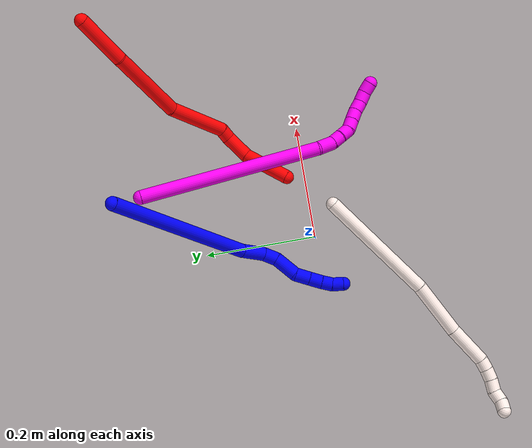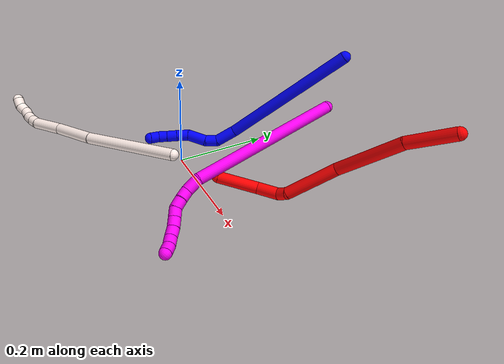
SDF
<sdf version="1.7">
 <world name="default">
  <model name="1">
   <static>0</static>
   <link name="1">
    <collision name="collision-cylinder-e_1_1_4">
     <pose>0.015487 -0.008972 -0.145802 3.08013 0.105624 2.08817</pose>
     <geometry><cylinder><radius>0.0125</radius><length>0.293792</length></cylinder></geometry>
     <surface>
      <friction><ode><mu>1.16</mu><mu2>1.16</mu2><slip1>0</slip1><slip2>0</slip2></ode></friction>
      <contact><ode><kp>1e+06</kp><kd>1</kd><max_vel>0</max_vel><min_depth>0.001</min_depth></ode></contact>
     </surface>
    </collision>
    <visual name="visual-cylinder-e_1_1_4">
     <pose>0.015487 -0.008972 -0.145802 3.08013 0.105624 2.08817</pose>
     <geometry><cylinder><radius>0.0125</radius><length>0.293792</length></cylinder></geometry>
     <material><ambient>0 0 1 1</ambient></material>
    </visual>
    <collision name="collision-cylinder-e_2_4_5">
     <pose>0.035038 -0.024712 -0.313242 2.83845 0.177366 1.05435</pose>
     <geometry><cylinder><radius>0.0125</radius><length>0.046067</length></cylinder></geometry>
     <surface>
      <friction><ode><mu>1.16</mu><mu2>1.16</mu2><slip1>0</slip1><slip2>0</slip2></ode></friction>
      <contact><ode><kp>1e+06</kp><kd>1</kd><max_vel>0</max_vel><min_depth>0.001</min_depth></ode></contact>
     </surface>
    </collision>
    <visual name="visual-cylinder-e_2_4_5">
     <pose>0.035038 -0.024712 -0.313242 2.83845 0.177366 1.05435</pose>
     <geometry><cylinder><radius>0.0125</radius><length>0.046067</length></cylinder></geometry>
     <material><ambient>0 0 1 1</ambient></material>
    </visual>
    <collision name="collision-cylinder-e_3_5_6">
     <pose>0.036404 -0.038968 -0.345123 2.51037 -0.209485 -0.622949</pose>
     <geometry><cylinder><radius>0.0125</radius><length>0.025944</length></cylinder></geometry>
     <surface>
      <friction><ode><mu>1.16</mu><mu2>1.16</mu2><slip1>0</slip1><slip2>0</slip2></ode></friction>
      <contact><ode><kp>1e+06</kp><kd>1</kd><max_vel>0</max_vel><min_depth>0.001</min_depth></ode></contact>
     </surface>
    </collision>
    <visual name="visual-cylinder-e_3_5_6">
     <pose>0.036404 -0.038968 -0.345123 2.51037 -0.209485 -0.622949</pose>
     <geometry><cylinder><radius>0.0125</radius><length>0.025944</length></cylinder></geometry>
     <material><ambient>0 0 1 1</ambient></material>
    </visual>
    <collision name="collision-cylinder-e_4_6_7">
     <pose>0.021955 -0.057896 -0.37002 2.47874 -0.563728 -1.39907</pose>
     <geometry><cylinder><radius>0.0125</radius><length>0.043987</length></cylinder></geometry>
     <surface>
      <friction><ode><mu>1.16</mu><mu2>1.16</mu2><slip1>0</slip1><slip2>0</slip2></ode></friction>
      <contact><ode><kp>1e+06</kp><kd>1</kd><max_vel>0</max_vel><min_depth>0.001</min_depth></ode></contact>
     </surface>
    </collision>
    <visual name="visual-cylinder-e_4_6_7">
     <pose>0.021955 -0.057896 -0.37002 2.47874 -0.563728 -1.39907</pose>
     <geometry><cylinder><radius>0.0125</radius><length>0.043987</length></cylinder></geometry>
     <material><ambient>0 0 1 1</ambient></material>
    </visual>
    <collision name="collision-cylinder-e_5_7_8">
     <pose>0.008404 -0.077561 -0.394896 2.46401 -0.136244 -0.382511</pose>
     <geometry><cylinder><radius>0.0125</radius><length>0.026487</length></cylinder></geometry>
     <surface>
      <friction><ode><mu>1.16</mu><mu2>1.16</mu2><slip1>0</slip1><slip2>0</slip2></ode></friction>
      <contact><ode><kp>1e+06</kp><kd>1</kd><max_vel>0</max_vel><min_depth>0.001</min_depth></ode></contact>
     </surface>
    </collision>
    <visual name="visual-cylinder-e_5_7_8">
     <pose>0.008404 -0.077561 -0.394896 2.46401 -0.136244 -0.382511</pose>
     <geometry><cylinder><radius>0.0125</radius><length>0.026487</length></cylinder></geometry>
     <material><ambient>0 0 1 1</ambient></material>
    </visual>
    <collision name="collision-cylinder-e_6_8_9">
     <pose>0.00518 -0.092933 -0.414323 2.48143 -0.121655 -0.351838</pose>
     <geometry><cylinder><radius>0.0125</radius><length>0.02348</length></cylinder></geometry>
     <surface>
      <friction><ode><mu>1.16</mu><mu2>1.16</mu2><slip1>0</slip1><slip2>0</slip2></ode></friction>
      <contact><ode><kp>1e+06</kp><kd>1</kd><max_vel>0</max_vel><min_depth>0.001</min_depth></ode></contact>
     </surface>
    </collision>
    <visual name="visual-cylinder-e_6_8_9">
     <pose>0.00518 -0.092933 -0.414323 2.48143 -0.121655 -0.351838</pose>
     <geometry><cylinder><radius>0.0125</radius><length>0.02348</length></cylinder></geometry>
     <material><ambient>0 0 1 1</ambient></material>
    </visual>
    <collision name="collision-cylinder-e_7_9_10">
     <pose>0.002821 -0.106984 -0.430739 2.37796 -0.09333 -0.231571</pose>
     <geometry><cylinder><radius>0.0125</radius><length>0.020056</length></cylinder></geometry>
     <surface>
      <friction><ode><mu>1.16</mu><mu2>1.16</mu2><slip1>0</slip1><slip2>0</slip2></ode></friction>
      <contact><ode><kp>1e+06</kp><kd>1</kd><max_vel>0</max_vel><min_depth>0.001</min_depth></ode></contact>
     </surface>
    </collision>
    <visual name="visual-cylinder-e_7_9_10">
     <pose>0.002821 -0.106984 -0.430739 2.37796 -0.09333 -0.231571</pose>
     <geometry><cylinder><radius>0.0125</radius><length>0.020056</length></cylinder></geometry>
     <material><ambient>0 0 1 1</ambient></material>
    </visual>
    <collision name="collision-cylinder-e_8_10_2">
     <pose>0.003317 -0.121835 -0.444009 2.2221 0.14219 0.2857</pose>
     <geometry><cylinder><radius>0.0125</radius><length>0.020188</length></cylinder></geometry>
     <surface>
      <friction><ode><mu>1.16</mu><mu2>1.16</mu2><slip1>0</slip1><slip2>0</slip2></ode></friction>
      <contact><ode><kp>1e+06</kp><kd>1</kd><max_vel>0</max_vel><min_depth>0.001</min_depth></ode></contact>
     </surface>
    </collision>
    <visual name="visual-cylinder-e_8_10_2">
     <pose>0.003317 -0.121835 -0.444009 2.2221 0.14219 0.2857</pose>
     <geometry><cylinder><radius>0.0125</radius><length>0.020188</length></cylinder></geometry>
     <material><ambient>0 0 1 1</ambient></material>
    </visual>
    <collision name="collision-sphere-2">
     <pose>0.004748 -0.129782 -0.450066 0 -0 0</pose>
     <geometry><sphere><radius>0.0125</radius></sphere></geometry>
     <surface>
      <friction><ode><mu>1.16</mu><mu2>1.16</mu2><slip1>0</slip1><slip2>0</slip2></ode></friction>
      <contact><ode><kp>1e+06</kp><kd>1</kd><max_vel>0</max_vel><min_depth>0.001</min_depth></ode></contact>
     </surface>
    </collision>
    <visual name="visual-sphere-2">
     <pose>0.004748 -0.129782 -0.450066 0 -0 0</pose>
     <geometry><sphere><radius>0.0125</radius></sphere></geometry>
     <material><ambient>0 0 1 1</ambient></material>
    </visual>
    <collision name="collision-sphere-10">
     <pose>0.001887 -0.113888 -0.437951 0 -0 0</pose>
     <geometry><sphere><radius>0.0125</radius></sphere></geometry>
     <surface>
      <friction><ode><mu>1.16</mu><mu2>1.16</mu2><slip1>0</slip1><slip2>0</slip2></ode></friction>
      <contact><ode><kp>1e+06</kp><kd>1</kd><max_vel>0</max_vel><min_depth>0.001</min_depth></ode></contact>
     </surface>
    </collision>
    <visual name="visual-sphere-10">
     <pose>0.001887 -0.113888 -0.437951 0 -0 0</pose>
     <geometry><sphere><radius>0.0125</radius></sphere></geometry>
     <material><ambient>0 0 1 1</ambient></material>
    </visual>
    <collision name="collision-sphere-9">
     <pose>0.003756 -0.100079 -0.423528 0 -0 0</pose>
     <geometry><sphere><radius>0.0125</radius></sphere></geometry>
     <surface>
      <friction><ode><mu>1.16</mu><mu2>1.16</mu2><slip1>0</slip1><slip2>0</slip2></ode></friction>
      <contact><ode><kp>1e+06</kp><kd>1</kd><max_vel>0</max_vel><min_depth>0.001</min_depth></ode></contact>
     </surface>
    </collision>
    <visual name="visual-sphere-9">
     <pose>0.003756 -0.100079 -0.423528 0 -0 0</pose>
     <geometry><sphere><radius>0.0125</radius></sphere></geometry>
     <material><ambient>0 0 1 1</ambient></material>
    </visual>
    <collision name="collision-sphere-4">
     <pose>0.030974 -0.017944 -0.291603 0 -0 0</pose>
     <geometry><sphere><radius>0.0125</radius></sphere></geometry>
     <surface>
      <friction><ode><mu>1.16</mu><mu2>1.16</mu2><slip1>0</slip1><slip2>0</slip2></ode></friction>
      <contact><ode><kp>1e+06</kp><kd>1</kd><max_vel>0</max_vel><min_depth>0.001</min_depth></ode></contact>
     </surface>
    </collision>
    <visual name="visual-sphere-4">
     <pose>0.030974 -0.017944 -0.291603 0 -0 0</pose>
     <geometry><sphere><radius>0.0125</radius></sphere></geometry>
     <material><ambient>0 0 1 1</ambient></material>
    </visual>
    <collision name="collision-sphere-1">
     <geometry><sphere><radius>0.0125</radius></sphere></geometry>
     <surface>
      <friction><ode><mu>1.16</mu><mu2>1.16</mu2><slip1>0</slip1><slip2>0</slip2></ode></friction>
      <contact><ode><kp>1e+06</kp><kd>1</kd><max_vel>0</max_vel><min_depth>0.001</min_depth></ode></contact>
     </surface>
    </collision>
    <visual name="visual-sphere-1">
     <geometry><sphere><radius>0.0125</radius></sphere></geometry>
     <material><ambient>0 0 1 1</ambient></material>
    </visual>
    <collision name="collision-sphere-8">
     <pose>0.006605 -0.085787 -0.405118 0 -0 0</pose>
     <geometry><sphere><radius>0.0125</radius></sphere></geometry>
     <surface>
      <friction><ode><mu>1.16</mu><mu2>1.16</mu2><slip1>0</slip1><slip2>0</slip2></ode></friction>
      <contact><ode><kp>1e+06</kp><kd>1</kd><max_vel>0</max_vel><min_depth>0.001</min_depth></ode></contact>
     </surface>
    </collision>
    <visual name="visual-sphere-8">
     <pose>0.006605 -0.085787 -0.405118 0 -0 0</pose>
     <geometry><sphere><radius>0.0125</radius></sphere></geometry>
     <material><ambient>0 0 1 1</ambient></material>
    </visual>
    <collision name="collision-sphere-5">
     <pose>0.039102 -0.03148 -0.33488 0 -0 0</pose>
     <geometry><sphere><radius>0.0125</radius></sphere></geometry>
     <surface>
      <friction><ode><mu>1.16</mu><mu2>1.16</mu2><slip1>0</slip1><slip2>0</slip2></ode></friction>
      <contact><ode><kp>1e+06</kp><kd>1</kd><max_vel>0</max_vel><min_depth>0.001</min_depth></ode></contact>
     </surface>
    </collision>
    <visual name="visual-sphere-5">
     <pose>0.039102 -0.03148 -0.33488 0 -0 0</pose>
     <geometry><sphere><radius>0.0125</radius></sphere></geometry>
     <material><ambient>0 0 1 1</ambient></material>
    </visual>
    <collision name="collision-sphere-6">
     <pose>0.033707 -0.046456 -0.355366 0 -0 0</pose>
     <geometry><sphere><radius>0.0125</radius></sphere></geometry>
     <surface>
      <friction><ode><mu>1.16</mu><mu2>1.16</mu2><slip1>0</slip1><slip2>0</slip2></ode></friction>
      <contact><ode><kp>1e+06</kp><kd>1</kd><max_vel>0</max_vel><min_depth>0.001</min_depth></ode></contact>
     </surface>
    </collision>
    <visual name="visual-sphere-6">
     <pose>0.033707 -0.046456 -0.355366 0 -0 0</pose>
     <geometry><sphere><radius>0.0125</radius></sphere></geometry>
     <material><ambient>0 0 1 1</ambient></material>
    </visual>
    <collision name="collision-sphere-7">
     <pose>0.010203 -0.069336 -0.384674 0 -0 0</pose>
     <geometry><sphere><radius>0.0125</radius></sphere></geometry>
     <surface>
      <friction><ode><mu>1.16</mu><mu2>1.16</mu2><slip1>0</slip1><slip2>0</slip2></ode></friction>
      <contact><ode><kp>1e+06</kp><kd>1</kd><max_vel>0</max_vel><min_depth>0.001</min_depth></ode></contact>
     </surface>
    </collision>
    <visual name="visual-sphere-7">
     <pose>0.010203 -0.069336 -0.384674 0 -0 0</pose>
     <geometry><sphere><radius>0.0125</radius></sphere></geometry>
     <material><ambient>0 0 1 1</ambient></material>
    </visual>
    <inertial>
     <pose>0.017084 -0.032347 -0.240571 0 -0 0</pose>
     <mass>0.5</mass>
     <inertia>
      <ixx>0.000805</ixx>
      <ixy>0</ixy>
      <ixz>0</ixz>
      <iyy>0.002876</iyy>
      <iyz>0</iyz>
      <izz>-0.000111</izz>
     </inertia>
    </inertial>
   </link>
   <pose>0.113881 0.319058 0.23826 -0.735192 0.448173 -0.273323</pose>
  </model>
  <model name="2">
   <static>0</static>
   <link name="2">
    <collision name="collision-cylinder-e_1_1_4">
     <pose>-0.004031 0.005012 -0.045194 -3.03115 -0.088416 1.34978</pose>
     <geometry><cylinder><radius>0.0125</radius><length>0.091299</length></cylinder></geometry>
     <surface>
      <friction><ode><mu>1.16</mu><mu2>1.16</mu2><slip1>0</slip1><slip2>0</slip2></ode></friction>
      <contact><ode><kp>1e+06</kp><kd>1</kd><max_vel>0</max_vel><min_depth>0.001</min_depth></ode></contact>
     </surface>
    </collision>
    <visual name="visual-cylinder-e_1_1_4">
     <pose>-0.004031 0.005012 -0.045194 -3.03115 -0.088416 1.34978</pose>
     <geometry><cylinder><radius>0.0125</radius><length>0.091299</length></cylinder></geometry>
     <material><ambient>1 0 0 1</ambient></material>
    </visual>
    <collision name="collision-cylinder-e_2_4_5">
     <pose>-0.001862 0.026163 -0.160673 -2.91588 0.085767 -0.723866</pose>
     <geometry><cylinder><radius>0.0125</radius><length>0.144759</length></cylinder></geometry>
     <surface>
      <friction><ode><mu>1.16</mu><mu2>1.16</mu2><slip1>0</slip1><slip2>0</slip2></ode></friction>
      <contact><ode><kp>1e+06</kp><kd>1</kd><max_vel>0</max_vel><min_depth>0.001</min_depth></ode></contact>
     </surface>
    </collision>
    <visual name="visual-cylinder-e_2_4_5">
     <pose>-0.001862 0.026163 -0.160673 -2.91588 0.085767 -0.723866</pose>
     <geometry><cylinder><radius>0.0125</radius><length>0.144759</length></cylinder></geometry>
     <material><ambient>1 0 0 1</ambient></material>
    </visual>
    <collision name="collision-cylinder-e_3_5_6">
     <pose>0.017931 0.038652 -0.285043 3.07422 0.245681 2.6087</pose>
     <geometry><cylinder><radius>0.0125</radius><length>0.111774</length></cylinder></geometry>
     <surface>
      <friction><ode><mu>1.16</mu><mu2>1.16</mu2><slip1>0</slip1><slip2>0</slip2></ode></friction>
      <contact><ode><kp>1e+06</kp><kd>1</kd><max_vel>0</max_vel><min_depth>0.001</min_depth></ode></contact>
     </surface>
    </collision>
    <visual name="visual-cylinder-e_3_5_6">
     <pose>0.017931 0.038652 -0.285043 3.07422 0.245681 2.6087</pose>
     <geometry><cylinder><radius>0.0125</radius><length>0.111774</length></cylinder></geometry>
     <material><ambient>1 0 0 1</ambient></material>
    </visual>
    <collision name="collision-cylinder-e_4_6_7">
     <pose>0.030054 0.036857 -0.349381 -2.96261 -0.140176 1.3278</pose>
     <geometry><cylinder><radius>0.0125</radius><length>0.021042</length></cylinder></geometry>
     <surface>
      <friction><ode><mu>1.16</mu><mu2>1.16</mu2><slip1>0</slip1><slip2>0</slip2></ode></friction>
      <contact><ode><kp>1e+06</kp><kd>1</kd><max_vel>0</max_vel><min_depth>0.001</min_depth></ode></contact>
     </surface>
    </collision>
    <visual name="visual-cylinder-e_4_6_7">
     <pose>0.030054 0.036857 -0.349381 -2.96261 -0.140176 1.3278</pose>
     <geometry><cylinder><radius>0.0125</radius><length>0.021042</length></cylinder></geometry>
     <material><ambient>1 0 0 1</ambient></material>
    </visual>
    <collision name="collision-cylinder-e_5_7_8">
     <pose>0.018687 0.03421 -0.379901 2.92303 -0.444797 -2.23815</pose>
     <geometry><cylinder><radius>0.0125</radius><length>0.046002</length></cylinder></geometry>
     <surface>
      <friction><ode><mu>1.16</mu><mu2>1.16</mu2><slip1>0</slip1><slip2>0</slip2></ode></friction>
      <contact><ode><kp>1e+06</kp><kd>1</kd><max_vel>0</max_vel><min_depth>0.001</min_depth></ode></contact>
     </surface>
    </collision>
    <visual name="visual-cylinder-e_5_7_8">
     <pose>0.018687 0.03421 -0.379901 2.92303 -0.444797 -2.23815</pose>
     <geometry><cylinder><radius>0.0125</radius><length>0.046002</length></cylinder></geometry>
     <material><ambient>1 0 0 1</ambient></material>
    </visual>
    <collision name="collision-cylinder-e_6_8_2">
     <pose>-0.007356 0.007456 -0.43266 2.54108 -0.389107 -1.13353</pose>
     <geometry><cylinder><radius>0.0125</radius><length>0.085123</length></cylinder></geometry>
     <surface>
      <friction><ode><mu>1.16</mu><mu2>1.16</mu2><slip1>0</slip1><slip2>0</slip2></ode></friction>
      <contact><ode><kp>1e+06</kp><kd>1</kd><max_vel>0</max_vel><min_depth>0.001</min_depth></ode></contact>
     </surface>
    </collision>
    <visual name="visual-cylinder-e_6_8_2">
     <pose>-0.007356 0.007456 -0.43266 2.54108 -0.389107 -1.13353</pose>
     <geometry><cylinder><radius>0.0125</radius><length>0.085123</length></cylinder></geometry>
     <material><ambient>1 0 0 1</ambient></material>
    </visual>
    <collision name="collision-sphere-2">
     <pose>-0.023502 -0.014797 -0.465151 0 -0 0</pose>
     <geometry><sphere><radius>0.0125</radius></sphere></geometry>
     <surface>
      <friction><ode><mu>1.16</mu><mu2>1.16</mu2><slip1>0</slip1><slip2>0</slip2></ode></friction>
      <contact><ode><kp>1e+06</kp><kd>1</kd><max_vel>0</max_vel><min_depth>0.001</min_depth></ode></contact>
     </surface>
    </collision>
    <visual name="visual-sphere-2">
     <pose>-0.023502 -0.014797 -0.465151 0 -0 0</pose>
     <geometry><sphere><radius>0.0125</radius></sphere></geometry>
     <material><ambient>1 0 0 1</ambient></material>
    </visual>
    <collision name="collision-sphere-4">
     <pose>-0.008062 0.010024 -0.090389 0 -0 0</pose>
     <geometry><sphere><radius>0.0125</radius></sphere></geometry>
     <surface>
      <friction><ode><mu>1.16</mu><mu2>1.16</mu2><slip1>0</slip1><slip2>0</slip2></ode></friction>
      <contact><ode><kp>1e+06</kp><kd>1</kd><max_vel>0</max_vel><min_depth>0.001</min_depth></ode></contact>
     </surface>
    </collision>
    <visual name="visual-sphere-4">
     <pose>-0.008062 0.010024 -0.090389 0 -0 0</pose>
     <geometry><sphere><radius>0.0125</radius></sphere></geometry>
     <material><ambient>1 0 0 1</ambient></material>
    </visual>
    <collision name="collision-sphere-1">
     <geometry><sphere><radius>0.0125</radius></sphere></geometry>
     <surface>
      <friction><ode><mu>1.16</mu><mu2>1.16</mu2><slip1>0</slip1><slip2>0</slip2></ode></friction>
      <contact><ode><kp>1e+06</kp><kd>1</kd><max_vel>0</max_vel><min_depth>0.001</min_depth></ode></contact>
     </surface>
    </collision>
    <visual name="visual-sphere-1">
     <geometry><sphere><radius>0.0125</radius></sphere></geometry>
     <material><ambient>1 0 0 1</ambient></material>
    </visual>
    <collision name="collision-sphere-8">
     <pose>0.008791 0.029708 -0.40017 0 -0 0</pose>
     <geometry><sphere><radius>0.0125</radius></sphere></geometry>
     <surface>
      <friction><ode><mu>1.16</mu><mu2>1.16</mu2><slip1>0</slip1><slip2>0</slip2></ode></friction>
      <contact><ode><kp>1e+06</kp><kd>1</kd><max_vel>0</max_vel><min_depth>0.001</min_depth></ode></contact>
     </surface>
    </collision>
    <visual name="visual-sphere-8">
     <pose>0.008791 0.029708 -0.40017 0 -0 0</pose>
     <geometry><sphere><radius>0.0125</radius></sphere></geometry>
     <material><ambient>1 0 0 1</ambient></material>
    </visual>
    <collision name="collision-sphere-5">
     <pose>0.004339 0.042301 -0.230957 0 -0 0</pose>
     <geometry><sphere><radius>0.0125</radius></sphere></geometry>
     <surface>
      <friction><ode><mu>1.16</mu><mu2>1.16</mu2><slip1>0</slip1><slip2>0</slip2></ode></friction>
      <contact><ode><kp>1e+06</kp><kd>1</kd><max_vel>0</max_vel><min_depth>0.001</min_depth></ode></contact>
     </surface>
    </collision>
    <visual name="visual-sphere-5">
     <pose>0.004339 0.042301 -0.230957 0 -0 0</pose>
     <geometry><sphere><radius>0.0125</radius></sphere></geometry>
     <material><ambient>1 0 0 1</ambient></material>
    </visual>
    <collision name="collision-sphere-6">
     <pose>0.031524 0.035003 -0.339129 0 -0 0</pose>
     <geometry><sphere><radius>0.0125</radius></sphere></geometry>
     <surface>
      <friction><ode><mu>1.16</mu><mu2>1.16</mu2><slip1>0</slip1><slip2>0</slip2></ode></friction>
      <contact><ode><kp>1e+06</kp><kd>1</kd><max_vel>0</max_vel><min_depth>0.001</min_depth></ode></contact>
     </surface>
    </collision>
    <visual name="visual-sphere-6">
     <pose>0.031524 0.035003 -0.339129 0 -0 0</pose>
     <geometry><sphere><radius>0.0125</radius></sphere></geometry>
     <material><ambient>1 0 0 1</ambient></material>
    </visual>
    <collision name="collision-sphere-7">
     <pose>0.028584 0.038712 -0.359632 0 -0 0</pose>
     <geometry><sphere><radius>0.0125</radius></sphere></geometry>
     <surface>
      <friction><ode><mu>1.16</mu><mu2>1.16</mu2><slip1>0</slip1><slip2>0</slip2></ode></friction>
      <contact><ode><kp>1e+06</kp><kd>1</kd><max_vel>0</max_vel><min_depth>0.001</min_depth></ode></contact>
     </surface>
    </collision>
    <visual name="visual-sphere-7">
     <pose>0.028584 0.038712 -0.359632 0 -0 0</pose>
     <geometry><sphere><radius>0.0125</radius></sphere></geometry>
     <material><ambient>1 0 0 1</ambient></material>
    </visual>
    <inertial>
     <pose>0.004465 0.023098 -0.241806 0 -0 0</pose>
     <mass>0.5</mass>
     <inertia>
      <ixx>2.4e-05</ixx>
      <ixy>0</ixy>
      <ixz>0</ixz>
      <iyy>-0.000195</iyy>
      <iyz>0</iyz>
      <izz>-8.4e-05</izz>
     </inertia>
    </inertial>
   </link>
   <pose>0.418424 0.317921 0.234718 -0.861627 0.694262 -0.298348</pose>
  </model>
  <model name="10">
   <static>0</static>
   <link name="10">
    <collision name="collision-cylinder-e_1_1_4">
     <pose>-0.023181 -0.147664 0.065098 1.15558 -0.142671 -0.093114</pose>
     <geometry><cylinder><radius>0.0125</radius><length>0.326066</length></cylinder></geometry>
     <surface>
      <friction><ode><mu>1.16</mu><mu2>1.16</mu2><slip1>0</slip1><slip2>0</slip2></ode></friction>
      <contact><ode><kp>1e+06</kp><kd>1</kd><max_vel>0</max_vel><min_depth>0.001</min_depth></ode></contact>
     </surface>
    </collision>
    <visual name="visual-cylinder-e_1_1_4">
     <pose>-0.023181 -0.147664 0.065098 1.15558 -0.142671 -0.093114</pose>
     <geometry><cylinder><radius>0.0125</radius><length>0.326066</length></cylinder></geometry>
     <material><ambient>1 0 0.964706 1</ambient></material>
    </visual>
    <collision name="collision-cylinder-e_2_4_5">
     <pose>-0.04981 -0.310697 0.131714 1.47231 -0.219652 -0.199162</pose>
     <geometry><cylinder><radius>0.0125</radius><length>0.031648</length></cylinder></geometry>
     <surface>
      <friction><ode><mu>1.16</mu><mu2>1.16</mu2><slip1>0</slip1><slip2>0</slip2></ode></friction>
      <contact><ode><kp>1e+06</kp><kd>1</kd><max_vel>0</max_vel><min_depth>0.001</min_depth></ode></contact>
     </surface>
    </collision>
    <visual name="visual-cylinder-e_2_4_5">
     <pose>-0.04981 -0.310697 0.131714 1.47231 -0.219652 -0.199162</pose>
     <geometry><cylinder><radius>0.0125</radius><length>0.031648</length></cylinder></geometry>
     <material><ambient>1 0 0.964706 1</ambient></material>
    </visual>
    <collision name="collision-cylinder-e_3_5_6">
     <pose>-0.05254 -0.336184 0.133586 1.5359 0.070843 0.068415</pose>
     <geometry><cylinder><radius>0.0125</radius><length>0.020299</length></cylinder></geometry>
     <surface>
      <friction><ode><mu>1.16</mu><mu2>1.16</mu2><slip1>0</slip1><slip2>0</slip2></ode></friction>
      <contact><ode><kp>1e+06</kp><kd>1</kd><max_vel>0</max_vel><min_depth>0.001</min_depth></ode></contact>
     </surface>
    </collision>
    <visual name="visual-cylinder-e_3_5_6">
     <pose>-0.05254 -0.336184 0.133586 1.5359 0.070843 0.068415</pose>
     <geometry><cylinder><radius>0.0125</radius><length>0.020299</length></cylinder></geometry>
     <material><ambient>1 0 0.964706 1</ambient></material>
    </visual>
    <collision name="collision-cylinder-e_4_6_7">
     <pose>-0.051905 -0.357016 0.13332 1.62848 -0.00779 -0.008253</pose>
     <geometry><cylinder><radius>0.0125</radius><length>0.021465</length></cylinder></geometry>
     <surface>
      <friction><ode><mu>1.16</mu><mu2>1.16</mu2><slip1>0</slip1><slip2>0</slip2></ode></friction>
      <contact><ode><kp>1e+06</kp><kd>1</kd><max_vel>0</max_vel><min_depth>0.001</min_depth></ode></contact>
     </surface>
    </collision>
    <visual name="visual-cylinder-e_4_6_7">
     <pose>-0.051905 -0.357016 0.13332 1.62848 -0.00779 -0.008253</pose>
     <geometry><cylinder><radius>0.0125</radius><length>0.021465</length></cylinder></geometry>
     <material><ambient>1 0 0.964706 1</ambient></material>
    </visual>
    <collision name="collision-cylinder-e_5_7_8">
     <pose>-0.048485 -0.376573 0.129276 1.94035 0.353869 0.510626</pose>
     <geometry><cylinder><radius>0.0125</radius><length>0.02022</length></cylinder></geometry>
     <surface>
      <friction><ode><mu>1.16</mu><mu2>1.16</mu2><slip1>0</slip1><slip2>0</slip2></ode></friction>
      <contact><ode><kp>1e+06</kp><kd>1</kd><max_vel>0</max_vel><min_depth>0.001</min_depth></ode></contact>
     </surface>
    </collision>
    <visual name="visual-cylinder-e_5_7_8">
     <pose>-0.048485 -0.376573 0.129276 1.94035 0.353869 0.510626</pose>
     <geometry><cylinder><radius>0.0125</radius><length>0.02022</length></cylinder></geometry>
     <material><ambient>1 0 0.964706 1</ambient></material>
    </visual>
    <collision name="collision-cylinder-e_6_8_9">
     <pose>-0.041263 -0.394283 0.122746 1.90756 0.376903 0.525249</pose>
     <geometry><cylinder><radius>0.0125</radius><length>0.020208</length></cylinder></geometry>
     <surface>
      <friction><ode><mu>1.16</mu><mu2>1.16</mu2><slip1>0</slip1><slip2>0</slip2></ode></friction>
      <contact><ode><kp>1e+06</kp><kd>1</kd><max_vel>0</max_vel><min_depth>0.001</min_depth></ode></contact>
     </surface>
    </collision>
    <visual name="visual-cylinder-e_6_8_9">
     <pose>-0.041263 -0.394283 0.122746 1.90756 0.376903 0.525249</pose>
     <geometry><cylinder><radius>0.0125</radius><length>0.020208</length></cylinder></geometry>
     <material><ambient>1 0 0.964706 1</ambient></material>
    </visual>
    <collision name="collision-cylinder-e_7_9_10">
     <pose>-0.033917 -0.412361 0.118012 1.74593 0.370011 0.439139</pose>
     <geometry><cylinder><radius>0.0125</radius><length>0.020066</length></cylinder></geometry>
     <surface>
      <friction><ode><mu>1.16</mu><mu2>1.16</mu2><slip1>0</slip1><slip2>0</slip2></ode></friction>
      <contact><ode><kp>1e+06</kp><kd>1</kd><max_vel>0</max_vel><min_depth>0.001</min_depth></ode></contact>
     </surface>
    </collision>
    <visual name="visual-cylinder-e_7_9_10">
     <pose>-0.033917 -0.412361 0.118012 1.74593 0.370011 0.439139</pose>
     <geometry><cylinder><radius>0.0125</radius><length>0.020066</length></cylinder></geometry>
     <material><ambient>1 0 0.964706 1</ambient></material>
    </visual>
    <collision name="collision-cylinder-e_8_10_11">
     <pose>-0.024984 -0.429982 0.115314 1.69714 0.559083 0.629956</pose>
     <geometry><cylinder><radius>0.0125</radius><length>0.020001</length></cylinder></geometry>
     <surface>
      <friction><ode><mu>1.16</mu><mu2>1.16</mu2><slip1>0</slip1><slip2>0</slip2></ode></friction>
      <contact><ode><kp>1e+06</kp><kd>1</kd><max_vel>0</max_vel><min_depth>0.001</min_depth></ode></contact>
     </surface>
    </collision>
    <visual name="visual-cylinder-e_8_10_11">
     <pose>-0.024984 -0.429982 0.115314 1.69714 0.559083 0.629956</pose>
     <geometry><cylinder><radius>0.0125</radius><length>0.020001</length></cylinder></geometry>
     <material><ambient>1 0 0.964706 1</ambient></material>
    </visual>
    <collision name="collision-cylinder-e_9_11_2">
     <pose>-0.013953 -0.446491 0.115624 1.40225 0.608763 0.518471</pose>
     <geometry><cylinder><radius>0.0125</radius><length>0.020028</length></cylinder></geometry>
     <surface>
      <friction><ode><mu>1.16</mu><mu2>1.16</mu2><slip1>0</slip1><slip2>0</slip2></ode></friction>
      <contact><ode><kp>1e+06</kp><kd>1</kd><max_vel>0</max_vel><min_depth>0.001</min_depth></ode></contact>
     </surface>
    </collision>
    <visual name="visual-cylinder-e_9_11_2">
     <pose>-0.013953 -0.446491 0.115624 1.40225 0.608763 0.518471</pose>
     <geometry><cylinder><radius>0.0125</radius><length>0.020028</length></cylinder></geometry>
     <material><ambient>1 0 0.964706 1</ambient></material>
    </visual>
    <collision name="collision-sphere-2">
     <pose>-0.008226 -0.45459 0.117002 0 -0 0</pose>
     <geometry><sphere><radius>0.0125</radius></sphere></geometry>
     <surface>
      <friction><ode><mu>1.16</mu><mu2>1.16</mu2><slip1>0</slip1><slip2>0</slip2></ode></friction>
      <contact><ode><kp>1e+06</kp><kd>1</kd><max_vel>0</max_vel><min_depth>0.001</min_depth></ode></contact>
     </surface>
    </collision>
    <visual name="visual-sphere-2">
     <pose>-0.008226 -0.45459 0.117002 0 -0 0</pose>
     <geometry><sphere><radius>0.0125</radius></sphere></geometry>
     <material><ambient>1 0 0.964706 1</ambient></material>
    </visual>
    <collision name="collision-sphere-11">
     <pose>-0.01968 -0.438392 0.114246 0 -0 0</pose>
     <geometry><sphere><radius>0.0125</radius></sphere></geometry>
     <surface>
      <friction><ode><mu>1.16</mu><mu2>1.16</mu2><slip1>0</slip1><slip2>0</slip2></ode></friction>
      <contact><ode><kp>1e+06</kp><kd>1</kd><max_vel>0</max_vel><min_depth>0.001</min_depth></ode></contact>
     </surface>
    </collision>
    <visual name="visual-sphere-11">
     <pose>-0.01968 -0.438392 0.114246 0 -0 0</pose>
     <geometry><sphere><radius>0.0125</radius></sphere></geometry>
     <material><ambient>1 0 0.964706 1</ambient></material>
    </visual>
    <collision name="collision-sphere-10">
     <pose>-0.030288 -0.421572 0.116382 0 -0 0</pose>
     <geometry><sphere><radius>0.0125</radius></sphere></geometry>
     <surface>
      <friction><ode><mu>1.16</mu><mu2>1.16</mu2><slip1>0</slip1><slip2>0</slip2></ode></friction>
      <contact><ode><kp>1e+06</kp><kd>1</kd><max_vel>0</max_vel><min_depth>0.001</min_depth></ode></contact>
     </surface>
    </collision>
    <visual name="visual-sphere-10">
     <pose>-0.030288 -0.421572 0.116382 0 -0 0</pose>
     <geometry><sphere><radius>0.0125</radius></sphere></geometry>
     <material><ambient>1 0 0.964706 1</ambient></material>
    </visual>
    <collision name="collision-sphere-9">
     <pose>-0.037545 -0.40315 0.119642 0 -0 0</pose>
     <geometry><sphere><radius>0.0125</radius></sphere></geometry>
     <surface>
      <friction><ode><mu>1.16</mu><mu2>1.16</mu2><slip1>0</slip1><slip2>0</slip2></ode></friction>
      <contact><ode><kp>1e+06</kp><kd>1</kd><max_vel>0</max_vel><min_depth>0.001</min_depth></ode></contact>
     </surface>
    </collision>
    <visual name="visual-sphere-9">
     <pose>-0.037545 -0.40315 0.119642 0 -0 0</pose>
     <geometry><sphere><radius>0.0125</radius></sphere></geometry>
     <material><ambient>1 0 0.964706 1</ambient></material>
    </visual>
    <collision name="collision-sphere-4">
     <pose>-0.046362 -0.295328 0.130195 0 -0 0</pose>
     <geometry><sphere><radius>0.0125</radius></sphere></geometry>
     <surface>
      <friction><ode><mu>1.16</mu><mu2>1.16</mu2><slip1>0</slip1><slip2>0</slip2></ode></friction>
      <contact><ode><kp>1e+06</kp><kd>1</kd><max_vel>0</max_vel><min_depth>0.001</min_depth></ode></contact>
     </surface>
    </collision>
    <visual name="visual-sphere-4">
     <pose>-0.046362 -0.295328 0.130195 0 -0 0</pose>
     <geometry><sphere><radius>0.0125</radius></sphere></geometry>
     <material><ambient>1 0 0.964706 1</ambient></material>
    </visual>
    <collision name="collision-sphere-1">
     <geometry><sphere><radius>0.0125</radius></sphere></geometry>
     <surface>
      <friction><ode><mu>1.16</mu><mu2>1.16</mu2><slip1>0</slip1><slip2>0</slip2></ode></friction>
      <contact><ode><kp>1e+06</kp><kd>1</kd><max_vel>0</max_vel><min_depth>0.001</min_depth></ode></contact>
     </surface>
    </collision>
    <visual name="visual-sphere-1">
     <geometry><sphere><radius>0.0125</radius></sphere></geometry>
     <material><ambient>1 0 0.964706 1</ambient></material>
    </visual>
    <collision name="collision-sphere-8">
     <pose>-0.044982 -0.385416 0.125851 0 -0 0</pose>
     <geometry><sphere><radius>0.0125</radius></sphere></geometry>
     <surface>
      <friction><ode><mu>1.16</mu><mu2>1.16</mu2><slip1>0</slip1><slip2>0</slip2></ode></friction>
      <contact><ode><kp>1e+06</kp><kd>1</kd><max_vel>0</max_vel><min_depth>0.001</min_depth></ode></contact>
     </surface>
    </collision>
    <visual name="visual-sphere-8">
     <pose>-0.044982 -0.385416 0.125851 0 -0 0</pose>
     <geometry><sphere><radius>0.0125</radius></sphere></geometry>
     <material><ambient>1 0 0.964706 1</ambient></material>
    </visual>
    <collision name="collision-sphere-5">
     <pose>-0.053258 -0.326066 0.133232 0 -0 0</pose>
     <geometry><sphere><radius>0.0125</radius></sphere></geometry>
     <surface>
      <friction><ode><mu>1.16</mu><mu2>1.16</mu2><slip1>0</slip1><slip2>0</slip2></ode></friction>
      <contact><ode><kp>1e+06</kp><kd>1</kd><max_vel>0</max_vel><min_depth>0.001</min_depth></ode></contact>
     </surface>
    </collision>
    <visual name="visual-sphere-5">
     <pose>-0.053258 -0.326066 0.133232 0 -0 0</pose>
     <geometry><sphere><radius>0.0125</radius></sphere></geometry>
     <material><ambient>1 0 0.964706 1</ambient></material>
    </visual>
    <collision name="collision-sphere-6">
     <pose>-0.051821 -0.346302 0.133939 0 -0 0</pose>
     <geometry><sphere><radius>0.0125</radius></sphere></geometry>
     <surface>
      <friction><ode><mu>1.16</mu><mu2>1.16</mu2><slip1>0</slip1><slip2>0</slip2></ode></friction>
      <contact><ode><kp>1e+06</kp><kd>1</kd><max_vel>0</max_vel><min_depth>0.001</min_depth></ode></contact>
     </surface>
    </collision>
    <visual name="visual-sphere-6">
     <pose>-0.051821 -0.346302 0.133939 0 -0 0</pose>
     <geometry><sphere><radius>0.0125</radius></sphere></geometry>
     <material><ambient>1 0 0.964706 1</ambient></material>
    </visual>
    <collision name="collision-sphere-7">
     <pose>-0.051989 -0.36773 0.132701 0 -0 0</pose>
     <geometry><sphere><radius>0.0125</radius></sphere></geometry>
     <surface>
      <friction><ode><mu>1.16</mu><mu2>1.16</mu2><slip1>0</slip1><slip2>0</slip2></ode></friction>
      <contact><ode><kp>1e+06</kp><kd>1</kd><max_vel>0</max_vel><min_depth>0.001</min_depth></ode></contact>
     </surface>
    </collision>
    <visual name="visual-sphere-7">
     <pose>-0.051989 -0.36773 0.132701 0 -0 0</pose>
     <geometry><sphere><radius>0.0125</radius></sphere></geometry>
     <material><ambient>1 0 0.964706 1</ambient></material>
    </visual>
    <inertial>
     <pose>-0.029179 -0.227734 0.086105 0 -0 0</pose>
     <mass>0.5</mass>
     <inertia>
      <ixx>0.002607</ixx>
      <ixy>0</ixy>
      <ixz>0</ixz>
      <iyy>0.000902</iyy>
      <iyz>0</iyz>
      <izz>0.003061</izz>
     </inertia>
    </inertial>
   </link>
   <pose>0.120723 0.285787 0.131657 0.551377 -0.619642 0.146083</pose>
  </model>
  <model name="11">
   <static>0</static>
   <link name="11">
    <collision name="collision-cylinder-e_1_1_4">
     <pose>-0.034466 -0.032962 0.098182 0.323897 -0.321263 -0.052932</pose>
     <geometry><cylinder><radius>0.0125</radius><length>0.218303</length></cylinder></geometry>
     <surface>
      <friction><ode><mu>1.16</mu><mu2>1.16</mu2><slip1>0</slip1><slip2>0</slip2></ode></friction>
      <contact><ode><kp>1e+06</kp><kd>1</kd><max_vel>0</max_vel><min_depth>0.001</min_depth></ode></contact>
     </surface>
    </collision>
    <visual name="visual-cylinder-e_1_1_4">
     <pose>-0.034466 -0.032962 0.098182 0.323897 -0.321263 -0.052932</pose>
     <geometry><cylinder><radius>0.0125</radius><length>0.218303</length></cylinder></geometry>
     <material><ambient>1 0.933333 0.909804 1</ambient></material>
    </visual>
    <collision name="collision-cylinder-e_2_4_5">
     <pose>-0.091414 -0.082904 0.238627 0.382044 -0.45851 -0.090192</pose>
     <geometry><cylinder><radius>0.0125</radius><length>0.101586</length></cylinder></geometry>
     <surface>
      <friction><ode><mu>1.16</mu><mu2>1.16</mu2><slip1>0</slip1><slip2>0</slip2></ode></friction>
      <contact><ode><kp>1e+06</kp><kd>1</kd><max_vel>0</max_vel><min_depth>0.001</min_depth></ode></contact>
     </surface>
    </collision>
    <visual name="visual-cylinder-e_2_4_5">
     <pose>-0.091414 -0.082904 0.238627 0.382044 -0.45851 -0.090192</pose>
     <geometry><cylinder><radius>0.0125</radius><length>0.101586</length></cylinder></geometry>
     <material><ambient>1 0.933333 0.909804 1</ambient></material>
    </visual>
    <collision name="collision-cylinder-e_3_5_6">
     <pose>-0.127596 -0.111215 0.3139 0.330636 -0.374079 -0.063129</pose>
     <geometry><cylinder><radius>0.0125</radius><length>0.074988</length></cylinder></geometry>
     <surface>
      <friction><ode><mu>1.16</mu><mu2>1.16</mu2><slip1>0</slip1><slip2>0</slip2></ode></friction>
      <contact><ode><kp>1e+06</kp><kd>1</kd><max_vel>0</max_vel><min_depth>0.001</min_depth></ode></contact>
     </surface>
    </collision>
    <visual name="visual-cylinder-e_3_5_6">
     <pose>-0.127596 -0.111215 0.3139 0.330636 -0.374079 -0.063129</pose>
     <geometry><cylinder><radius>0.0125</radius><length>0.074988</length></cylinder></geometry>
     <material><ambient>1 0.933333 0.909804 1</ambient></material>
    </visual>
    <collision name="collision-cylinder-e_4_6_7">
     <pose>-0.14729 -0.125073 0.354664 0.315121 -0.633742 -0.104104</pose>
     <geometry><cylinder><radius>0.0125</radius><length>0.020242</length></cylinder></geometry>
     <surface>
      <friction><ode><mu>1.16</mu><mu2>1.16</mu2><slip1>0</slip1><slip2>0</slip2></ode></friction>
      <contact><ode><kp>1e+06</kp><kd>1</kd><max_vel>0</max_vel><min_depth>0.001</min_depth></ode></contact>
     </surface>
    </collision>
    <visual name="visual-cylinder-e_4_6_7">
     <pose>-0.14729 -0.125073 0.354664 0.315121 -0.633742 -0.104104</pose>
     <geometry><cylinder><radius>0.0125</radius><length>0.020242</length></cylinder></geometry>
     <material><ambient>1 0.933333 0.909804 1</ambient></material>
    </visual>
    <collision name="collision-cylinder-e_5_7_8">
     <pose>-0.160386 -0.129688 0.369836 0.274345 -0.744643 -0.107715</pose>
     <geometry><cylinder><radius>0.0125</radius><length>0.020959</length></cylinder></geometry>
     <surface>
      <friction><ode><mu>1.16</mu><mu2>1.16</mu2><slip1>0</slip1><slip2>0</slip2></ode></friction>
      <contact><ode><kp>1e+06</kp><kd>1</kd><max_vel>0</max_vel><min_depth>0.001</min_depth></ode></contact>
     </surface>
    </collision>
    <visual name="visual-cylinder-e_5_7_8">
     <pose>-0.160386 -0.129688 0.369836 0.274345 -0.744643 -0.107715</pose>
     <geometry><cylinder><radius>0.0125</radius><length>0.020959</length></cylinder></geometry>
     <material><ambient>1 0.933333 0.909804 1</ambient></material>
    </visual>
    <collision name="collision-cylinder-e_6_8_9">
     <pose>-0.176513 -0.133131 0.383991 0.198523 -0.920054 -0.098609</pose>
     <geometry><cylinder><radius>0.0125</radius><length>0.022687</length></cylinder></geometry>
     <surface>
      <friction><ode><mu>1.16</mu><mu2>1.16</mu2><slip1>0</slip1><slip2>0</slip2></ode></friction>
      <contact><ode><kp>1e+06</kp><kd>1</kd><max_vel>0</max_vel><min_depth>0.001</min_depth></ode></contact>
     </surface>
    </collision>
    <visual name="visual-cylinder-e_6_8_9">
     <pose>-0.176513 -0.133131 0.383991 0.198523 -0.920054 -0.098609</pose>
     <geometry><cylinder><radius>0.0125</radius><length>0.022687</length></cylinder></geometry>
     <material><ambient>1 0.933333 0.909804 1</ambient></material>
    </visual>
    <collision name="collision-cylinder-e_7_9_10">
     <pose>-0.191527 -0.133446 0.399383 -0.119592 -0.601872 0.037157</pose>
     <geometry><cylinder><radius>0.0125</radius><length>0.021154</length></cylinder></geometry>
     <surface>
      <friction><ode><mu>1.16</mu><mu2>1.16</mu2><slip1>0</slip1><slip2>0</slip2></ode></friction>
      <contact><ode><kp>1e+06</kp><kd>1</kd><max_vel>0</max_vel><min_depth>0.001</min_depth></ode></contact>
     </surface>
    </collision>
    <visual name="visual-cylinder-e_7_9_10">
     <pose>-0.191527 -0.133446 0.399383 -0.119592 -0.601872 0.037157</pose>
     <geometry><cylinder><radius>0.0125</radius><length>0.021154</length></cylinder></geometry>
     <material><ambient>1 0.933333 0.909804 1</ambient></material>
    </visual>
    <collision name="collision-cylinder-e_8_10_2">
     <pose>-0.205109 -0.128407 0.413253 -0.654321 -0.857495 0.30779</pose>
     <geometry><cylinder><radius>0.0125</radius><length>0.020082</length></cylinder></geometry>
     <surface>
      <friction><ode><mu>1.16</mu><mu2>1.16</mu2><slip1>0</slip1><slip2>0</slip2></ode></friction>
      <contact><ode><kp>1e+06</kp><kd>1</kd><max_vel>0</max_vel><min_depth>0.001</min_depth></ode></contact>
     </surface>
    </collision>
    <visual name="visual-cylinder-e_8_10_2">
     <pose>-0.205109 -0.128407 0.413253 -0.654321 -0.857495 0.30779</pose>
     <geometry><cylinder><radius>0.0125</radius><length>0.020082</length></cylinder></geometry>
     <material><ambient>1 0.933333 0.909804 1</ambient></material>
    </visual>
    <collision name="collision-sphere-2">
     <pose>-0.212701 -0.124409 0.418466 0 -0 0</pose>
     <geometry><sphere><radius>0.0125</radius></sphere></geometry>
     <surface>
      <friction><ode><mu>1.16</mu><mu2>1.16</mu2><slip1>0</slip1><slip2>0</slip2></ode></friction>
      <contact><ode><kp>1e+06</kp><kd>1</kd><max_vel>0</max_vel><min_depth>0.001</min_depth></ode></contact>
     </surface>
    </collision>
    <visual name="visual-sphere-2">
     <pose>-0.212701 -0.124409 0.418466 0 -0 0</pose>
     <geometry><sphere><radius>0.0125</radius></sphere></geometry>
     <material><ambient>1 0.933333 0.909804 1</ambient></material>
    </visual>
    <collision name="collision-sphere-10">
     <pose>-0.197516 -0.132406 0.40804 0 -0 0</pose>
     <geometry><sphere><radius>0.0125</radius></sphere></geometry>
     <surface>
      <friction><ode><mu>1.16</mu><mu2>1.16</mu2><slip1>0</slip1><slip2>0</slip2></ode></friction>
      <contact><ode><kp>1e+06</kp><kd>1</kd><max_vel>0</max_vel><min_depth>0.001</min_depth></ode></contact>
     </surface>
    </collision>
    <visual name="visual-sphere-10">
     <pose>-0.197516 -0.132406 0.40804 0 -0 0</pose>
     <geometry><sphere><radius>0.0125</radius></sphere></geometry>
     <material><ambient>1 0.933333 0.909804 1</ambient></material>
    </visual>
    <collision name="collision-sphere-9">
     <pose>-0.185538 -0.134486 0.390727 0 -0 0</pose>
     <geometry><sphere><radius>0.0125</radius></sphere></geometry>
     <surface>
      <friction><ode><mu>1.16</mu><mu2>1.16</mu2><slip1>0</slip1><slip2>0</slip2></ode></friction>
      <contact><ode><kp>1e+06</kp><kd>1</kd><max_vel>0</max_vel><min_depth>0.001</min_depth></ode></contact>
     </surface>
    </collision>
    <visual name="visual-sphere-9">
     <pose>-0.185538 -0.134486 0.390727 0 -0 0</pose>
     <geometry><sphere><radius>0.0125</radius></sphere></geometry>
     <material><ambient>1 0.933333 0.909804 1</ambient></material>
    </visual>
    <collision name="collision-sphere-4">
     <pose>-0.068932 -0.065923 0.196364 0 -0 0</pose>
     <geometry><sphere><radius>0.0125</radius></sphere></geometry>
     <surface>
      <friction><ode><mu>1.16</mu><mu2>1.16</mu2><slip1>0</slip1><slip2>0</slip2></ode></friction>
      <contact><ode><kp>1e+06</kp><kd>1</kd><max_vel>0</max_vel><min_depth>0.001</min_depth></ode></contact>
     </surface>
    </collision>
    <visual name="visual-sphere-4">
     <pose>-0.068932 -0.065923 0.196364 0 -0 0</pose>
     <geometry><sphere><radius>0.0125</radius></sphere></geometry>
     <material><ambient>1 0.933333 0.909804 1</ambient></material>
    </visual>
    <collision name="collision-sphere-1">
     <geometry><sphere><radius>0.0125</radius></sphere></geometry>
     <surface>
      <friction><ode><mu>1.16</mu><mu2>1.16</mu2><slip1>0</slip1><slip2>0</slip2></ode></friction>
      <contact><ode><kp>1e+06</kp><kd>1</kd><max_vel>0</max_vel><min_depth>0.001</min_depth></ode></contact>
     </surface>
    </collision>
    <visual name="visual-sphere-1">
     <geometry><sphere><radius>0.0125</radius></sphere></geometry>
     <material><ambient>1 0.933333 0.909804 1</ambient></material>
    </visual>
    <collision name="collision-sphere-8">
     <pose>-0.167488 -0.131776 0.377254 0 -0 0</pose>
     <geometry><sphere><radius>0.0125</radius></sphere></geometry>
     <surface>
      <friction><ode><mu>1.16</mu><mu2>1.16</mu2><slip1>0</slip1><slip2>0</slip2></ode></friction>
      <contact><ode><kp>1e+06</kp><kd>1</kd><max_vel>0</max_vel><min_depth>0.001</min_depth></ode></contact>
     </surface>
    </collision>
    <visual name="visual-sphere-8">
     <pose>-0.167488 -0.131776 0.377254 0 -0 0</pose>
     <geometry><sphere><radius>0.0125</radius></sphere></geometry>
     <material><ambient>1 0.933333 0.909804 1</ambient></material>
    </visual>
    <collision name="collision-sphere-5">
     <pose>-0.113896 -0.099884 0.280889 0 -0 0</pose>
     <geometry><sphere><radius>0.0125</radius></sphere></geometry>
     <surface>
      <friction><ode><mu>1.16</mu><mu2>1.16</mu2><slip1>0</slip1><slip2>0</slip2></ode></friction>
      <contact><ode><kp>1e+06</kp><kd>1</kd><max_vel>0</max_vel><min_depth>0.001</min_depth></ode></contact>
     </surface>
    </collision>
    <visual name="visual-sphere-5">
     <pose>-0.113896 -0.099884 0.280889 0 -0 0</pose>
     <geometry><sphere><radius>0.0125</radius></sphere></geometry>
     <material><ambient>1 0.933333 0.909804 1</ambient></material>
    </visual>
    <collision name="collision-sphere-6">
     <pose>-0.141297 -0.122545 0.346911 0 -0 0</pose>
     <geometry><sphere><radius>0.0125</radius></sphere></geometry>
     <surface>
      <friction><ode><mu>1.16</mu><mu2>1.16</mu2><slip1>0</slip1><slip2>0</slip2></ode></friction>
      <contact><ode><kp>1e+06</kp><kd>1</kd><max_vel>0</max_vel><min_depth>0.001</min_depth></ode></contact>
     </surface>
    </collision>
    <visual name="visual-sphere-6">
     <pose>-0.141297 -0.122545 0.346911 0 -0 0</pose>
     <geometry><sphere><radius>0.0125</radius></sphere></geometry>
     <material><ambient>1 0.933333 0.909804 1</ambient></material>
    </visual>
    <collision name="collision-sphere-7">
     <pose>-0.153284 -0.1276 0.362418 0 -0 0</pose>
     <geometry><sphere><radius>0.0125</radius></sphere></geometry>
     <surface>
      <friction><ode><mu>1.16</mu><mu2>1.16</mu2><slip1>0</slip1><slip2>0</slip2></ode></friction>
      <contact><ode><kp>1e+06</kp><kd>1</kd><max_vel>0</max_vel><min_depth>0.001</min_depth></ode></contact>
     </surface>
    </collision>
    <visual name="visual-sphere-7">
     <pose>-0.153284 -0.1276 0.362418 0 -0 0</pose>
     <geometry><sphere><radius>0.0125</radius></sphere></geometry>
     <material><ambient>1 0.933333 0.909804 1</ambient></material>
    </visual>
    <inertial>
     <pose>-0.089793 -0.075258 0.219205 0 -0 0</pose>
     <mass>0.5</mass>
     <inertia><ixx>0.000882</ixx><ixy>0</ixy><ixz>0</ixz><iyy>0.0009</iyy><iyz>0</iyz><izz>0.000676</izz></inertia>
    </inertial>
   </link>
   <pose>0.053006 -0.041675 0.06349 1.45641 0.210191 -0.570974</pose>
  </model>
 </world>
</sdf>
